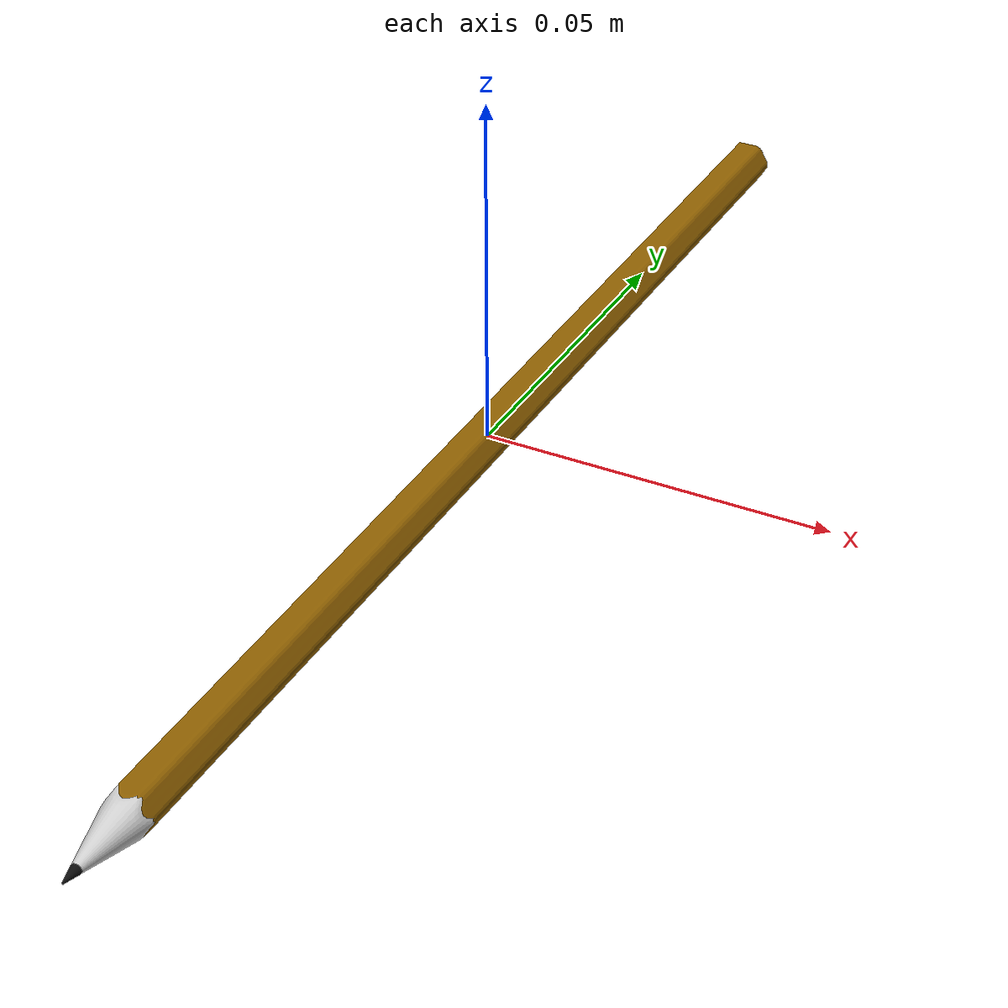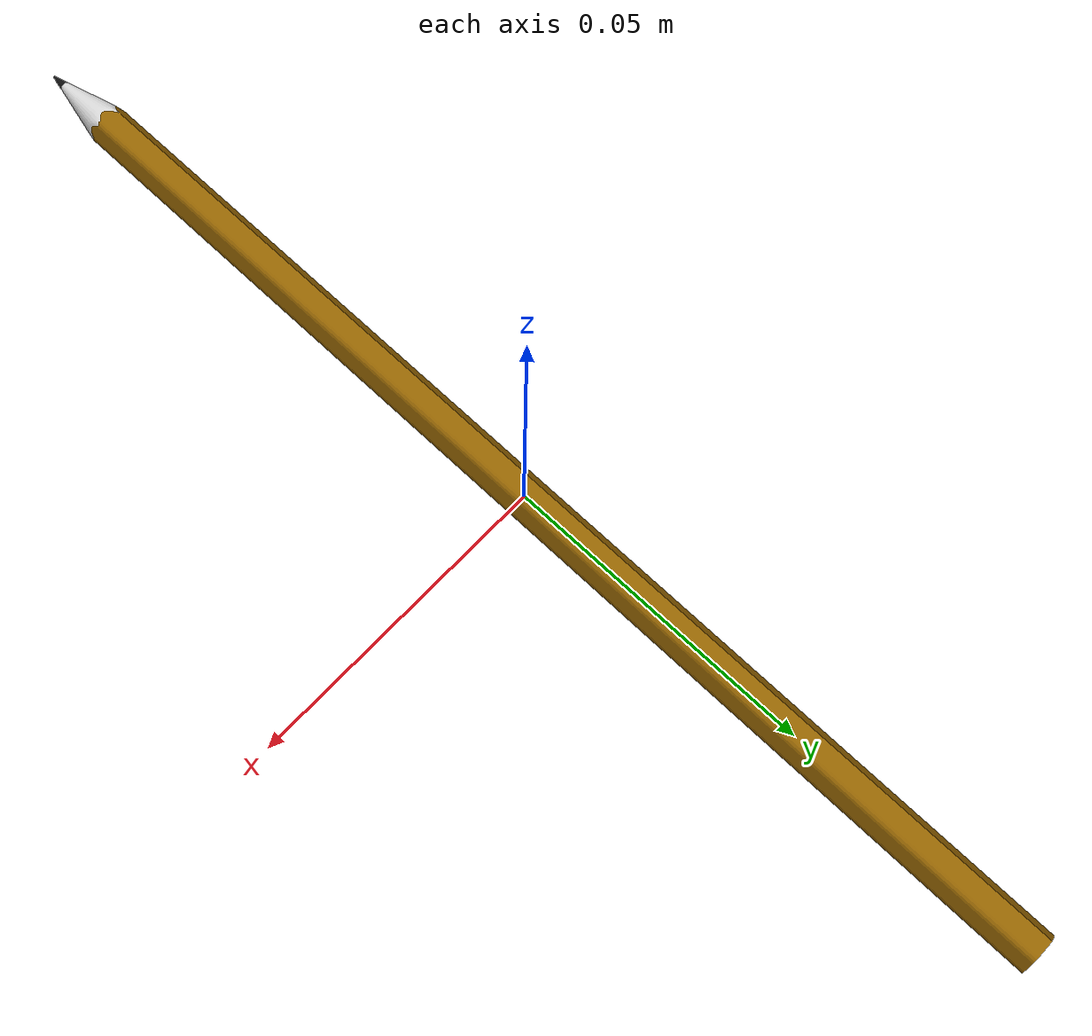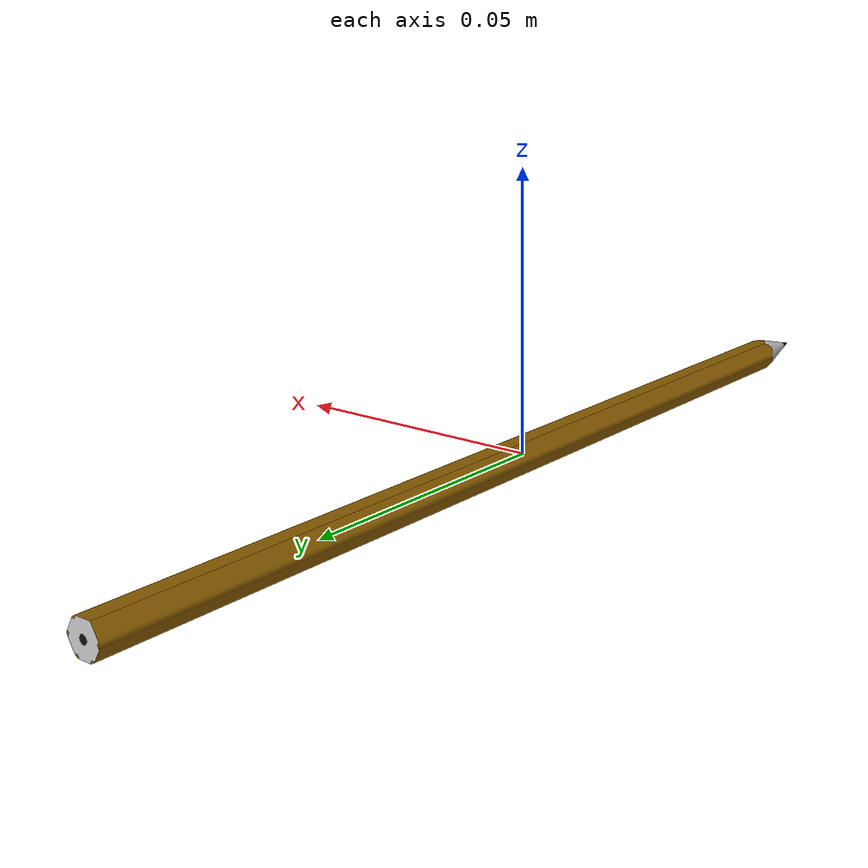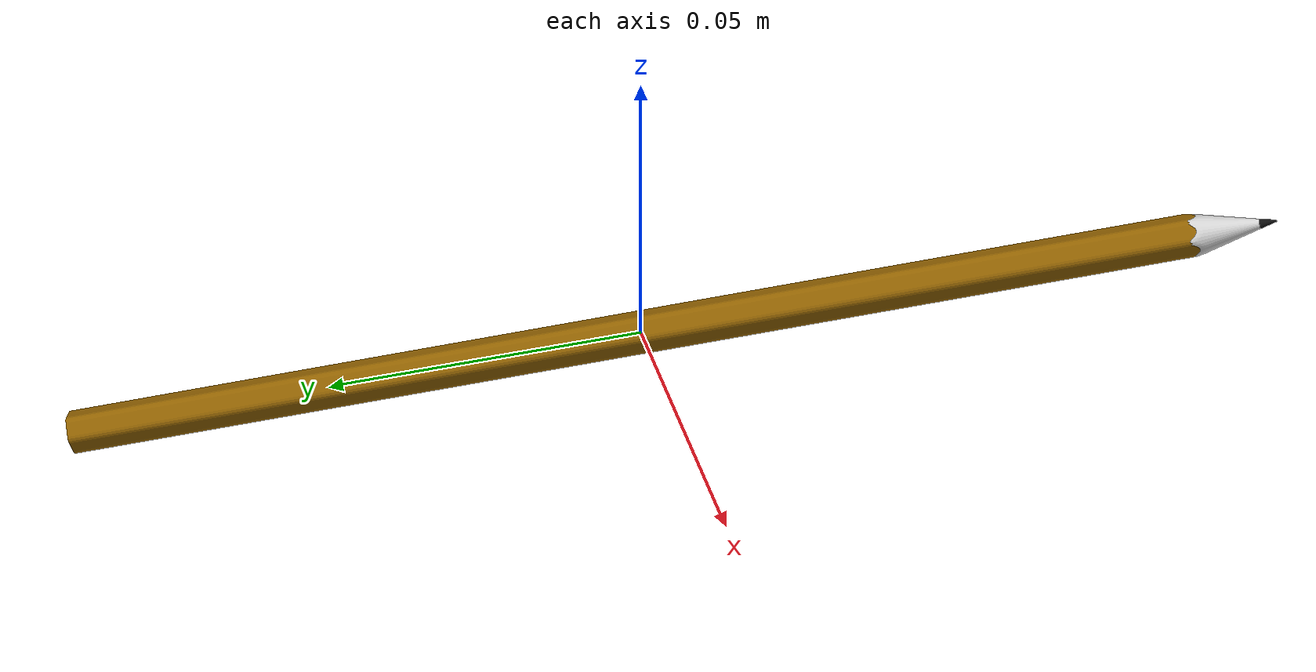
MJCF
<mujoco model="pencil">
  <default>
    <default class="visual">
      <geom group="1" type="mesh" contype="0" conaffinity="0"/>
    </default>
    <default class="collision">
      <geom group="0" type="mesh" solref="0.01 1" solimp="0.99 0.99 0.01" margin="0.001" priority="1" friction="15 15 0.0001"/>
    </default>
  </default>
  <asset>
    <material name="granite" specular="0.5" shininess="0.5" rgba="0.052712 0.052712 0.052712 1.000000"/>
    <material name="pencil_paint" specular="0.5" shininess="0.5" rgba="0.563541 0.378081 0.000000 1.000000"/>
    <material name="wood_pencil" specular="0.5" shininess="0.5" rgba="0.800000 0.800000 0.800000 1.000000"/>
    <mesh file="pencil_0.obj" name="pencil_0"/>
    <mesh file="pencil_1.obj" name="pencil_1"/>
    <mesh file="pencil_2.obj" name="pencil_2"/>
    <mesh file="pencil_collision_0.obj" name="pencil_collision_0"/>
  </asset>
  <worldbody>
    <body name="base" pos="0 0 0">
      <body name="object">
      <geom mesh="pencil_0" material="pencil_paint" class="visual"/>
      <geom mesh="pencil_1" material="granite" class="visual"/>
      <geom mesh="pencil_2" material="wood_pencil" class="visual"/>
      <geom mesh="pencil_collision_0" rgba="1 0 0 0" class="collision"/>
      </body>
    </body>
  </worldbody>
</mujoco>
